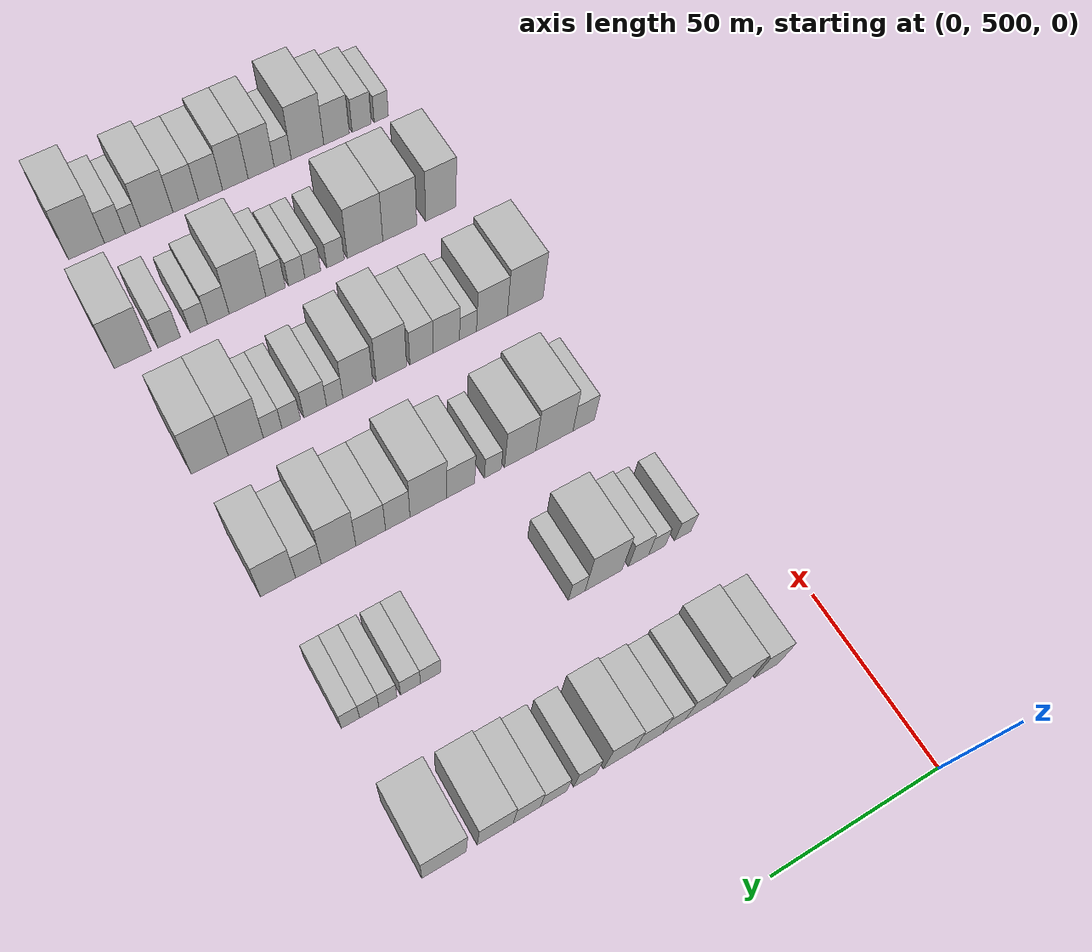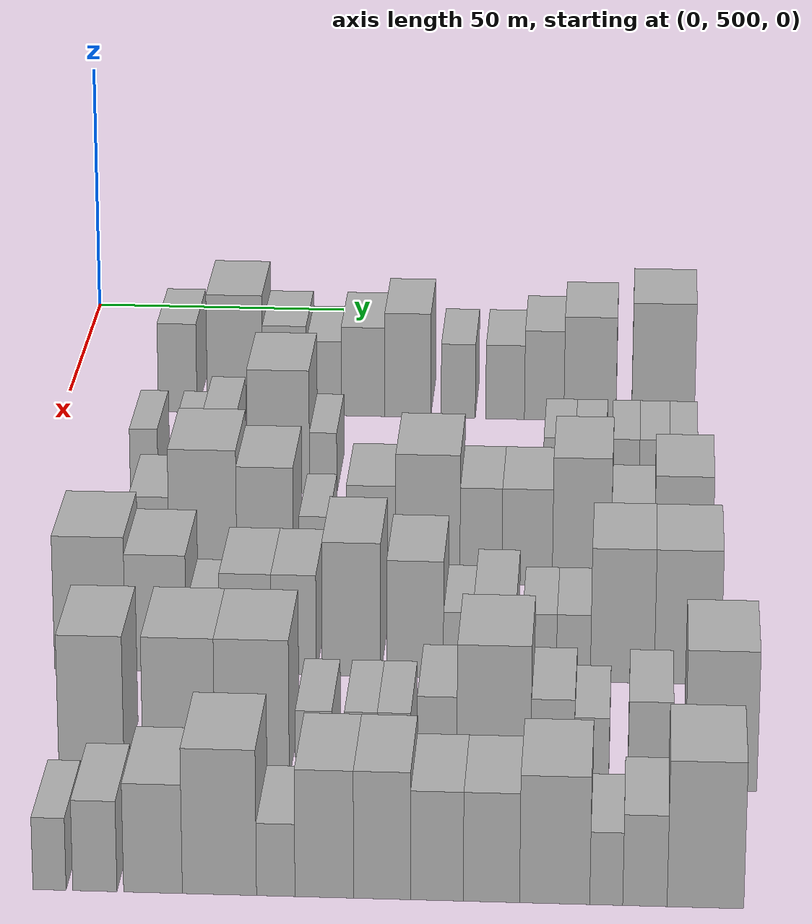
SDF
<sdf version="1.6">
 <world name="default">
  <model name="building_123">
   <static>1</static>
   <pose>50.0000 522.0347 0 0.000000 0.000000 0.000000</pose>
   <link name="link">
    <pose>0 0 9.00 0 0 0</pose>
    <collision name="collision"><geometry><box><size>20.0000 7.4185 18.0000</size></box></geometry></collision>
    <visual name="visual">
     <cast_shadows>0</cast_shadows>
     <geometry><box><size>20.0000 7.4185 18.0000</size></box></geometry>
     <material>
      <script>
       <uri>model://HANNAS_wall/materials/scripts</uri>
       <uri>model://HANNAS_wall/materials/textures</uri>
       <name>vrc/HANNAS_wall</name>
      </script>
     </material>
    </visual>
   </link>
  </model>
  <model name="building_124">
   <static>1</static>
   <pose>50.0000 533.0693 0 0.000000 0.000000 0.000000</pose>
   <link name="link">
    <pose>0 0 12.00 0 0 0</pose>
    <collision name="collision"><geometry><box><size>20.0000 10.6507 24.0000</size></box></geometry></collision>
    <visual name="visual">
     <cast_shadows>0</cast_shadows>
     <geometry><box><size>20.0000 10.6507 24.0000</size></box></geometry>
     <material>
      <script>
       <uri>model://HANNAS_wall/materials/scripts</uri>
       <uri>model://HANNAS_wall/materials/textures</uri>
       <name>vrc/HANNAS_wall</name>
      </script>
     </material>
    </visual>
   </link>
  </model>
  <model name="building_125">
   <static>1</static>
   <pose>50.0000 542.5778 0 0.000000 0.000000 0.000000</pose>
   <link name="link">
    <pose>0 0 9.00 0 0 0</pose>
    <collision name="collision"><geometry><box><size>20.0000 8.3663 18.0000</size></box></geometry></collision>
    <visual name="visual">
     <cast_shadows>0</cast_shadows>
     <geometry><box><size>20.0000 8.3663 18.0000</size></box></geometry>
     <material>
      <script>
       <uri>model://HANNAS_wall/materials/scripts</uri>
       <uri>model://HANNAS_wall/materials/textures</uri>
       <name>vrc/HANNAS_wall</name>
      </script>
     </material>
    </visual>
   </link>
  </model>
  <model name="building_126">
   <static>1</static>
   <pose>50.0000 550.0968 0 0.000000 0.000000 0.000000</pose>
   <link name="link">
    <pose>0 0 7.50 0 0 0</pose>
    <collision name="collision"><geometry><box><size>20.0000 6.6716 15.0000</size></box></geometry></collision>
    <visual name="visual">
     <cast_shadows>0</cast_shadows>
     <geometry><box><size>20.0000 6.6716 15.0000</size></box></geometry>
     <material>
      <script>
       <uri>model://HANNAS_wall/materials/scripts</uri>
       <uri>model://HANNAS_wall/materials/textures</uri>
       <name>vrc/HANNAS_wall</name>
      </script>
     </material>
    </visual>
   </link>
  </model>
  <model name="building_127">
   <static>1</static>
   <pose>50.0000 557.5930 0 0.000000 0.000000 0.000000</pose>
   <link name="link">
    <pose>0 0 9.00 0 0 0</pose>
    <collision name="collision"><geometry><box><size>20.0000 8.3209 18.0000</size></box></geometry></collision>
    <visual name="visual">
     <cast_shadows>0</cast_shadows>
     <geometry><box><size>20.0000 8.3209 18.0000</size></box></geometry>
     <material>
      <script>
       <uri>model://HANNAS_wall/materials/scripts</uri>
       <uri>model://HANNAS_wall/materials/textures</uri>
       <name>vrc/HANNAS_wall</name>
      </script>
     </material>
    </visual>
   </link>
  </model>
  <model name="building_128">
   <static>1</static>
   <pose>50.0000 566.1516 0 0.000000 0.000000 0.000000</pose>
   <link name="link">
    <pose>0 0 10.50 0 0 0</pose>
    <collision name="collision"><geometry><box><size>20.0000 8.7962 21.0000</size></box></geometry></collision>
    <visual name="visual">
     <cast_shadows>0</cast_shadows>
     <geometry><box><size>20.0000 8.7962 21.0000</size></box></geometry>
     <material>
      <script>
       <uri>model://HANNAS_wall/materials/scripts</uri>
       <uri>model://HANNAS_wall/materials/textures</uri>
       <name>vrc/HANNAS_wall</name>
      </script>
     </material>
    </visual>
   </link>
  </model>
  <model name="building_129">
   <static>1</static>
   <pose>50.0000 575.8102 0 0.000000 0.000000 0.000000</pose>
   <link name="link">
    <pose>0 0 7.50 0 0 0</pose>
    <collision name="collision"><geometry><box><size>20.0000 6.5209 15.0000</size></box></geometry></collision>
    <visual name="visual">
     <cast_shadows>0</cast_shadows>
     <geometry><box><size>20.0000 6.5209 15.0000</size></box></geometry>
     <material>
      <script>
       <uri>model://HANNAS_wall/materials/scripts</uri>
       <uri>model://HANNAS_wall/materials/textures</uri>
       <name>vrc/HANNAS_wall</name>
      </script>
     </material>
    </visual>
   </link>
  </model>
  <model name="building_130">
   <static>1</static>
   <pose>50.0000 584.7648 0 0.000000 0.000000 0.000000</pose>
   <link name="link">
    <pose>0 0 7.50 0 0 0</pose>
    <collision name="collision"><geometry><box><size>20.0000 7.3884 15.0000</size></box></geometry></collision>
    <visual name="visual">
     <cast_shadows>0</cast_shadows>
     <geometry><box><size>20.0000 7.3884 15.0000</size></box></geometry>
     <material>
      <script>
       <uri>model://HANNAS_wall/materials/scripts</uri>
       <uri>model://HANNAS_wall/materials/textures</uri>
       <name>vrc/HANNAS_wall</name>
      </script>
     </material>
    </visual>
   </link>
  </model>
  <model name="building_131">
   <static>1</static>
   <pose>50.0000 592.2208 0 0.000000 0.000000 0.000000</pose>
   <link name="link">
    <pose>0 0 9.00 0 0 0</pose>
    <collision name="collision"><geometry><box><size>20.0000 7.5235 18.0000</size></box></geometry></collision>
    <visual name="visual">
     <cast_shadows>0</cast_shadows>
     <geometry><box><size>20.0000 7.5235 18.0000</size></box></geometry>
     <material>
      <script>
       <uri>model://HANNAS_wall/materials/scripts</uri>
       <uri>model://HANNAS_wall/materials/textures</uri>
       <name>vrc/HANNAS_wall</name>
      </script>
     </material>
    </visual>
   </link>
  </model>
  <model name="building_132">
   <static>1</static>
   <pose>50.0000 600.9324 0 0.000000 0.000000 0.000000</pose>
   <link name="link">
    <pose>0 0 10.50 0 0 0</pose>
    <collision name="collision"><geometry><box><size>20.0000 9.8997 21.0000</size></box></geometry></collision>
    <visual name="visual">
     <cast_shadows>0</cast_shadows>
     <geometry><box><size>20.0000 9.8997 21.0000</size></box></geometry>
     <material>
      <script>
       <uri>model://HANNAS_wall/materials/scripts</uri>
       <uri>model://HANNAS_wall/materials/textures</uri>
       <name>vrc/HANNAS_wall</name>
      </script>
     </material>
    </visual>
   </link>
  </model>
  <model name="building_133">
   <static>1</static>
   <pose>50.0000 614.8468 0 0.000000 0.000000 0.000000</pose>
   <link name="link">
    <pose>0 0 12.00 0 0 0</pose>
    <collision name="collision"><geometry><box><size>20.0000 11.9291 24.0000</size></box></geometry></collision>
    <visual name="visual">
     <cast_shadows>0</cast_shadows>
     <geometry><box><size>20.0000 11.9291 24.0000</size></box></geometry>
     <material>
      <script>
       <uri>model://HANNAS_wall/materials/scripts</uri>
       <uri>model://HANNAS_wall/materials/textures</uri>
       <name>vrc/HANNAS_wall</name>
      </script>
     </material>
    </visual>
   </link>
  </model>
  <model name="building_253">
   <static>1</static>
   <pose>90.0000 519.9269 0 0.000000 0.000000 0.000000</pose>
   <link name="link">
    <pose>0 0 6.00 0 0 0</pose>
    <collision name="collision"><geometry><box><size>20.0000 5.1195 12.0000</size></box></geometry></collision>
    <visual name="visual">
     <cast_shadows>0</cast_shadows>
     <geometry><box><size>20.0000 5.1195 12.0000</size></box></geometry>
     <material>
      <script>
       <uri>model://HANNAS_wall/materials/scripts</uri>
       <uri>model://HANNAS_wall/materials/textures</uri>
       <name>vrc/HANNAS_wall</name>
      </script>
     </material>
    </visual>
   </link>
  </model>
  <model name="building_254">
   <static>1</static>
   <pose>90.0000 528.1009 0 0.000000 0.000000 0.000000</pose>
   <link name="link">
    <pose>0 0 6.00 0 0 0</pose>
    <collision name="collision"><geometry><box><size>20.0000 5.2286 12.0000</size></box></geometry></collision>
    <visual name="visual">
     <cast_shadows>0</cast_shadows>
     <geometry><box><size>20.0000 5.2286 12.0000</size></box></geometry>
     <material>
      <script>
       <uri>model://HANNAS_wall/materials/scripts</uri>
       <uri>model://HANNAS_wall/materials/textures</uri>
       <name>vrc/HANNAS_wall</name>
      </script>
     </material>
    </visual>
   </link>
  </model>
  <model name="building_255">
   <static>1</static>
   <pose>90.0000 533.8353 0 0.000000 0.000000 0.000000</pose>
   <link name="link">
    <pose>0 0 7.50 0 0 0</pose>
    <collision name="collision"><geometry><box><size>20.0000 6.2402 15.0000</size></box></geometry></collision>
    <visual name="visual">
     <cast_shadows>0</cast_shadows>
     <geometry><box><size>20.0000 6.2402 15.0000</size></box></geometry>
     <material>
      <script>
       <uri>model://HANNAS_wall/materials/scripts</uri>
       <uri>model://HANNAS_wall/materials/textures</uri>
       <name>vrc/HANNAS_wall</name>
      </script>
     </material>
    </visual>
   </link>
  </model>
  <model name="building_256">
   <static>1</static>
   <pose>90.0000 544.6321 0 0.000000 0.000000 0.000000</pose>
   <link name="link">
    <pose>0 0 12.00 0 0 0</pose>
    <collision name="collision"><geometry><box><size>20.0000 11.3534 24.0000</size></box></geometry></collision>
    <visual name="visual">
     <cast_shadows>0</cast_shadows>
     <geometry><box><size>20.0000 11.3534 24.0000</size></box></geometry>
     <material>
      <script>
       <uri>model://HANNAS_wall/materials/scripts</uri>
       <uri>model://HANNAS_wall/materials/textures</uri>
       <name>vrc/HANNAS_wall</name>
      </script>
     </material>
    </visual>
   </link>
  </model>
  <model name="building_257">
   <static>1</static>
   <pose>90.0000 552.8049 0 0.000000 0.000000 0.000000</pose>
   <link name="link">
    <pose>0 0 6.00 0 0 0</pose>
    <collision name="collision"><geometry><box><size>20.0000 4.9923 12.0000</size></box></geometry></collision>
    <visual name="visual">
     <cast_shadows>0</cast_shadows>
     <geometry><box><size>20.0000 4.9923 12.0000</size></box></geometry>
     <material>
      <script>
       <uri>model://HANNAS_wall/materials/scripts</uri>
       <uri>model://HANNAS_wall/materials/textures</uri>
       <name>vrc/HANNAS_wall</name>
      </script>
     </material>
    </visual>
   </link>
  </model>
  <model name="building_258">
   <static>1</static>
   <pose>90.0000 595.9168 0 0.000000 0.000000 0.000000</pose>
   <link name="link">
    <pose>0 0 6.00 0 0 0</pose>
    <collision name="collision"><geometry><box><size>20.0000 5.7438 12.0000</size></box></geometry></collision>
    <visual name="visual">
     <cast_shadows>0</cast_shadows>
     <geometry><box><size>20.0000 5.7438 12.0000</size></box></geometry>
     <material>
      <script>
       <uri>model://HANNAS_wall/materials/scripts</uri>
       <uri>model://HANNAS_wall/materials/textures</uri>
       <name>vrc/HANNAS_wall</name>
      </script>
     </material>
    </visual>
   </link>
  </model>
  <model name="building_259">
   <static>1</static>
   <pose>90.0000 601.5986 0 0.000000 0.000000 0.000000</pose>
   <link name="link">
    <pose>0 0 6.00 0 0 0</pose>
    <collision name="collision"><geometry><box><size>20.0000 5.6197 12.0000</size></box></geometry></collision>
    <visual name="visual">
     <cast_shadows>0</cast_shadows>
     <geometry><box><size>20.0000 5.6197 12.0000</size></box></geometry>
     <material>
      <script>
       <uri>model://HANNAS_wall/materials/scripts</uri>
       <uri>model://HANNAS_wall/materials/textures</uri>
       <name>vrc/HANNAS_wall</name>
      </script>
     </material>
    </visual>
   </link>
  </model>
  <model name="building_260">
   <static>1</static>
   <pose>90.0000 607.9324 0 0.000000 0.000000 0.000000</pose>
   <link name="link">
    <pose>0 0 6.00 0 0 0</pose>
    <collision name="collision"><geometry><box><size>20.0000 5.0478 12.0000</size></box></geometry></collision>
    <visual name="visual">
     <cast_shadows>0</cast_shadows>
     <geometry><box><size>20.0000 5.0478 12.0000</size></box></geometry>
     <material>
      <script>
       <uri>model://HANNAS_wall/materials/scripts</uri>
       <uri>model://HANNAS_wall/materials/textures</uri>
       <name>vrc/HANNAS_wall</name>
      </script>
     </material>
    </visual>
   </link>
  </model>
  <model name="building_261">
   <static>1</static>
   <pose>90.0000 613.1589 0 0.000000 0.000000 0.000000</pose>
   <link name="link">
    <pose>0 0 6.00 0 0 0</pose>
    <collision name="collision"><geometry><box><size>20.0000 5.4052 12.0000</size></box></geometry></collision>
    <visual name="visual">
     <cast_shadows>0</cast_shadows>
     <geometry><box><size>20.0000 5.4052 12.0000</size></box></geometry>
     <material>
      <script>
       <uri>model://HANNAS_wall/materials/scripts</uri>
       <uri>model://HANNAS_wall/materials/textures</uri>
       <name>vrc/HANNAS_wall</name>
      </script>
     </material>
    </visual>
   </link>
  </model>
  <model name="building_262">
   <static>1</static>
   <pose>90.0000 618.4021 0 0.000000 0.000000 0.000000</pose>
   <link name="link">
    <pose>0 0 6.00 0 0 0</pose>
    <collision name="collision"><geometry><box><size>20.0000 5.0812 12.0000</size></box></geometry></collision>
    <visual name="visual">
     <cast_shadows>0</cast_shadows>
     <geometry><box><size>20.0000 5.0812 12.0000</size></box></geometry>
     <material>
      <script>
       <uri>model://HANNAS_wall/materials/scripts</uri>
       <uri>model://HANNAS_wall/materials/textures</uri>
       <name>vrc/HANNAS_wall</name>
      </script>
     </material>
    </visual>
   </link>
  </model>
  <model name="building_391">
   <static>1</static>
   <pose>130.0000 525.1942 0 0.000000 0.000000 0.000000</pose>
   <link name="link">
    <pose>0 0 7.50 0 0 0</pose>
    <collision name="collision"><geometry><box><size>20.0000 6.9788 15.0000</size></box></geometry></collision>
    <visual name="visual">
     <cast_shadows>0</cast_shadows>
     <geometry><box><size>20.0000 6.9788 15.0000</size></box></geometry>
     <material>
      <script>
       <uri>model://HANNAS_wall/materials/scripts</uri>
       <uri>model://HANNAS_wall/materials/textures</uri>
       <name>vrc/HANNAS_wall</name>
      </script>
     </material>
    </visual>
   </link>
  </model>
  <model name="building_392">
   <static>1</static>
   <pose>130.0000 534.6092 0 0.000000 0.000000 0.000000</pose>
   <link name="link">
    <pose>0 0 12.00 0 0 0</pose>
    <collision name="collision"><geometry><box><size>20.0000 11.8512 24.0000</size></box></geometry></collision>
    <visual name="visual">
     <cast_shadows>0</cast_shadows>
     <geometry><box><size>20.0000 11.8512 24.0000</size></box></geometry>
     <material>
      <script>
       <uri>model://HANNAS_wall/materials/scripts</uri>
       <uri>model://HANNAS_wall/materials/textures</uri>
       <name>vrc/HANNAS_wall</name>
      </script>
     </material>
    </visual>
   </link>
  </model>
  <model name="building_393">
   <static>1</static>
   <pose>130.0000 545.4912 0 0.000000 0.000000 0.000000</pose>
   <link name="link">
    <pose>0 0 10.50 0 0 0</pose>
    <collision name="collision"><geometry><box><size>20.0000 9.9129 21.0000</size></box></geometry></collision>
    <visual name="visual">
     <cast_shadows>0</cast_shadows>
     <geometry><box><size>20.0000 9.9129 21.0000</size></box></geometry>
     <material>
      <script>
       <uri>model://HANNAS_wall/materials/scripts</uri>
       <uri>model://HANNAS_wall/materials/textures</uri>
       <name>vrc/HANNAS_wall</name>
      </script>
     </material>
    </visual>
   </link>
  </model>
  <model name="building_394">
   <static>1</static>
   <pose>130.0000 554.0895 0 0.000000 0.000000 0.000000</pose>
   <link name="link">
    <pose>0 0 6.00 0 0 0</pose>
    <collision name="collision"><geometry><box><size>20.0000 5.2837 12.0000</size></box></geometry></collision>
    <visual name="visual">
     <cast_shadows>0</cast_shadows>
     <geometry><box><size>20.0000 5.2837 12.0000</size></box></geometry>
     <material>
      <script>
       <uri>model://HANNAS_wall/materials/scripts</uri>
       <uri>model://HANNAS_wall/materials/textures</uri>
       <name>vrc/HANNAS_wall</name>
      </script>
     </material>
    </visual>
   </link>
  </model>
  <model name="building_395">
   <static>1</static>
   <pose>130.0000 564.0157 0 0.000000 0.000000 0.000000</pose>
   <link name="link">
    <pose>0 0 9.00 0 0 0</pose>
    <collision name="collision"><geometry><box><size>20.0000 8.5686 18.0000</size></box></geometry></collision>
    <visual name="visual">
     <cast_shadows>0</cast_shadows>
     <geometry><box><size>20.0000 8.5686 18.0000</size></box></geometry>
     <material>
      <script>
       <uri>model://HANNAS_wall/materials/scripts</uri>
       <uri>model://HANNAS_wall/materials/textures</uri>
       <name>vrc/HANNAS_wall</name>
      </script>
     </material>
    </visual>
   </link>
  </model>
  <model name="building_396">
   <static>1</static>
   <pose>130.0000 573.9036 0 0.000000 0.000000 0.000000</pose>
   <link name="link">
    <pose>0 0 12.00 0 0 0</pose>
    <collision name="collision"><geometry><box><size>20.0000 11.2072 24.0000</size></box></geometry></collision>
    <visual name="visual">
     <cast_shadows>0</cast_shadows>
     <geometry><box><size>20.0000 11.2072 24.0000</size></box></geometry>
     <material>
      <script>
       <uri>model://HANNAS_wall/materials/scripts</uri>
       <uri>model://HANNAS_wall/materials/textures</uri>
       <name>vrc/HANNAS_wall</name>
      </script>
     </material>
    </visual>
   </link>
  </model>
  <model name="building_397">
   <static>1</static>
   <pose>130.0000 583.1644 0 0.000000 0.000000 0.000000</pose>
   <link name="link">
    <pose>0 0 9.00 0 0 0</pose>
    <collision name="collision"><geometry><box><size>20.0000 7.3144 18.0000</size></box></geometry></collision>
    <visual name="visual">
     <cast_shadows>0</cast_shadows>
     <geometry><box><size>20.0000 7.3144 18.0000</size></box></geometry>
     <material>
      <script>
       <uri>model://HANNAS_wall/materials/scripts</uri>
       <uri>model://HANNAS_wall/materials/textures</uri>
       <name>vrc/HANNAS_wall</name>
      </script>
     </material>
    </visual>
   </link>
  </model>
  <model name="building_398">
   <static>1</static>
   <pose>130.0000 591.2149 0 0.000000 0.000000 0.000000</pose>
   <link name="link">
    <pose>0 0 9.00 0 0 0</pose>
    <collision name="collision"><geometry><box><size>20.0000 8.7865 18.0000</size></box></geometry></collision>
    <visual name="visual">
     <cast_shadows>0</cast_shadows>
     <geometry><box><size>20.0000 8.7865 18.0000</size></box></geometry>
     <material>
      <script>
       <uri>model://HANNAS_wall/materials/scripts</uri>
       <uri>model://HANNAS_wall/materials/textures</uri>
       <name>vrc/HANNAS_wall</name>
      </script>
     </material>
    </visual>
   </link>
  </model>
  <model name="building_399">
   <static>1</static>
   <pose>130.0000 600.6918 0 0.000000 0.000000 0.000000</pose>
   <link name="link">
    <pose>0 0 12.00 0 0 0</pose>
    <collision name="collision"><geometry><box><size>20.0000 10.1672 24.0000</size></box></geometry></collision>
    <visual name="visual">
     <cast_shadows>0</cast_shadows>
     <geometry><box><size>20.0000 10.1672 24.0000</size></box></geometry>
     <material>
      <script>
       <uri>model://HANNAS_wall/materials/scripts</uri>
       <uri>model://HANNAS_wall/materials/textures</uri>
       <name>vrc/HANNAS_wall</name>
      </script>
     </material>
    </visual>
   </link>
  </model>
  <model name="building_400">
   <static>1</static>
   <pose>130.0000 609.5119 0 0.000000 0.000000 0.000000</pose>
   <link name="link">
    <pose>0 0 7.50 0 0 0</pose>
    <collision name="collision"><geometry><box><size>20.0000 7.4730 15.0000</size></box></geometry></collision>
    <visual name="visual">
     <cast_shadows>0</cast_shadows>
     <geometry><box><size>20.0000 7.4730 15.0000</size></box></geometry>
     <material>
      <script>
       <uri>model://HANNAS_wall/materials/scripts</uri>
       <uri>model://HANNAS_wall/materials/textures</uri>
       <name>vrc/HANNAS_wall</name>
      </script>
     </material>
    </visual>
   </link>
  </model>
  <model name="building_401">
   <static>1</static>
   <pose>130.0000 618.3020 0 0.000000 0.000000 0.000000</pose>
   <link name="link">
    <pose>0 0 10.50 0 0 0</pose>
    <collision name="collision"><geometry><box><size>20.0000 10.1071 21.0000</size></box></geometry></collision>
    <visual name="visual">
     <cast_shadows>0</cast_shadows>
     <geometry><box><size>20.0000 10.1071 21.0000</size></box></geometry>
     <material>
      <script>
       <uri>model://HANNAS_wall/materials/scripts</uri>
       <uri>model://HANNAS_wall/materials/textures</uri>
       <name>vrc/HANNAS_wall</name>
      </script>
     </material>
    </visual>
   </link>
  </model>
  <model name="building_534">
   <static>1</static>
   <pose>170.0000 519.5546 0 0.000000 0.000000 0.000000</pose>
   <link name="link">
    <pose>0 0 12.00 0 0 0</pose>
    <collision name="collision"><geometry><box><size>20.0000 11.9289 24.0000</size></box></geometry></collision>
    <visual name="visual">
     <cast_shadows>0</cast_shadows>
     <geometry><box><size>20.0000 11.9289 24.0000</size></box></geometry>
     <material>
      <script>
       <uri>model://HANNAS_wall/materials/scripts</uri>
       <uri>model://HANNAS_wall/materials/textures</uri>
       <name>vrc/HANNAS_wall</name>
      </script>
     </material>
    </visual>
   </link>
  </model>
  <model name="building_535">
   <static>1</static>
   <pose>170.0000 530.6144 0 0.000000 0.000000 0.000000</pose>
   <link name="link">
    <pose>0 0 10.50 0 0 0</pose>
    <collision name="collision"><geometry><box><size>20.0000 10.1907 21.0000</size></box></geometry></collision>
    <visual name="visual">
     <cast_shadows>0</cast_shadows>
     <geometry><box><size>20.0000 10.1907 21.0000</size></box></geometry>
     <material>
      <script>
       <uri>model://HANNAS_wall/materials/scripts</uri>
       <uri>model://HANNAS_wall/materials/textures</uri>
       <name>vrc/HANNAS_wall</name>
      </script>
     </material>
    </visual>
   </link>
  </model>
  <model name="building_536">
   <static>1</static>
   <pose>170.0000 538.4869 0 0.000000 0.000000 0.000000</pose>
   <link name="link">
    <pose>0 0 6.00 0 0 0</pose>
    <collision name="collision"><geometry><box><size>20.0000 5.5544 12.0000</size></box></geometry></collision>
    <visual name="visual">
     <cast_shadows>0</cast_shadows>
     <geometry><box><size>20.0000 5.5544 12.0000</size></box></geometry>
     <material>
      <script>
       <uri>model://HANNAS_wall/materials/scripts</uri>
       <uri>model://HANNAS_wall/materials/textures</uri>
       <name>vrc/HANNAS_wall</name>
      </script>
     </material>
    </visual>
   </link>
  </model>
  <model name="building_537">
   <static>1</static>
   <pose>170.0000 545.5565 0 0.000000 0.000000 0.000000</pose>
   <link name="link">
    <pose>0 0 9.00 0 0 0</pose>
    <collision name="collision"><geometry><box><size>20.0000 8.5847 18.0000</size></box></geometry></collision>
    <visual name="visual">
     <cast_shadows>0</cast_shadows>
     <geometry><box><size>20.0000 8.5847 18.0000</size></box></geometry>
     <material>
      <script>
       <uri>model://HANNAS_wall/materials/scripts</uri>
       <uri>model://HANNAS_wall/materials/textures</uri>
       <name>vrc/HANNAS_wall</name>
      </script>
     </material>
    </visual>
   </link>
  </model>
  <model name="building_538">
   <static>1</static>
   <pose>170.0000 553.5806 0 0.000000 0.000000 0.000000</pose>
   <link name="link">
    <pose>0 0 9.00 0 0 0</pose>
    <collision name="collision"><geometry><box><size>20.0000 7.4637 18.0000</size></box></geometry></collision>
    <visual name="visual">
     <cast_shadows>0</cast_shadows>
     <geometry><box><size>20.0000 7.4637 18.0000</size></box></geometry>
     <material>
      <script>
       <uri>model://HANNAS_wall/materials/scripts</uri>
       <uri>model://HANNAS_wall/materials/textures</uri>
       <name>vrc/HANNAS_wall</name>
      </script>
     </material>
    </visual>
   </link>
  </model>
  <model name="building_539">
   <static>1</static>
   <pose>170.0000 563.1712 0 0.000000 0.000000 0.000000</pose>
   <link name="link">
    <pose>0 0 12.00 0 0 0</pose>
    <collision name="collision"><geometry><box><size>20.0000 9.7175 24.0000</size></box></geometry></collision>
    <visual name="visual">
     <cast_shadows>0</cast_shadows>
     <geometry><box><size>20.0000 9.7175 24.0000</size></box></geometry>
     <material>
      <script>
       <uri>model://HANNAS_wall/materials/scripts</uri>
       <uri>model://HANNAS_wall/materials/textures</uri>
       <name>vrc/HANNAS_wall</name>
      </script>
     </material>
    </visual>
   </link>
  </model>
  <model name="building_540">
   <static>1</static>
   <pose>170.0000 573.7438 0 0.000000 0.000000 0.000000</pose>
   <link name="link">
    <pose>0 0 10.50 0 0 0</pose>
    <collision name="collision"><geometry><box><size>20.0000 9.4277 21.0000</size></box></geometry></collision>
    <visual name="visual">
     <cast_shadows>0</cast_shadows>
     <geometry><box><size>20.0000 9.4277 21.0000</size></box></geometry>
     <material>
      <script>
       <uri>model://HANNAS_wall/materials/scripts</uri>
       <uri>model://HANNAS_wall/materials/textures</uri>
       <name>vrc/HANNAS_wall</name>
      </script>
     </material>
    </visual>
   </link>
  </model>
  <model name="building_541">
   <static>1</static>
   <pose>170.0000 580.9743 0 0.000000 0.000000 0.000000</pose>
   <link name="link">
    <pose>0 0 6.00 0 0 0</pose>
    <collision name="collision"><geometry><box><size>20.0000 5.0333 12.0000</size></box></geometry></collision>
    <visual name="visual">
     <cast_shadows>0</cast_shadows>
     <geometry><box><size>20.0000 5.0333 12.0000</size></box></geometry>
     <material>
      <script>
       <uri>model://HANNAS_wall/materials/scripts</uri>
       <uri>model://HANNAS_wall/materials/textures</uri>
       <name>vrc/HANNAS_wall</name>
      </script>
     </material>
    </visual>
   </link>
  </model>
  <model name="building_542">
   <static>1</static>
   <pose>170.0000 587.0076 0 0.000000 0.000000 0.000000</pose>
   <link name="link">
    <pose>0 0 7.50 0 0 0</pose>
    <collision name="collision"><geometry><box><size>20.0000 7.0334 15.0000</size></box></geometry></collision>
    <visual name="visual">
     <cast_shadows>0</cast_shadows>
     <geometry><box><size>20.0000 7.0334 15.0000</size></box></geometry>
     <material>
      <script>
       <uri>model://HANNAS_wall/materials/scripts</uri>
       <uri>model://HANNAS_wall/materials/textures</uri>
       <name>vrc/HANNAS_wall</name>
      </script>
     </material>
    </visual>
   </link>
  </model>
  <model name="building_543">
   <static>1</static>
   <pose>170.0000 594.3684 0 0.000000 0.000000 0.000000</pose>
   <link name="link">
    <pose>0 0 6.00 0 0 0</pose>
    <collision name="collision"><geometry><box><size>20.0000 5.6882 12.0000</size></box></geometry></collision>
    <visual name="visual">
     <cast_shadows>0</cast_shadows>
     <geometry><box><size>20.0000 5.6882 12.0000</size></box></geometry>
     <material>
      <script>
       <uri>model://HANNAS_wall/materials/scripts</uri>
       <uri>model://HANNAS_wall/materials/textures</uri>
       <name>vrc/HANNAS_wall</name>
      </script>
     </material>
    </visual>
   </link>
  </model>
  <model name="building_544">
   <static>1</static>
   <pose>170.0000 600.0298 0 0.000000 0.000000 0.000000</pose>
   <link name="link">
    <pose>0 0 6.00 0 0 0</pose>
    <collision name="collision"><geometry><box><size>20.0000 5.6346 12.0000</size></box></geometry></collision>
    <visual name="visual">
     <cast_shadows>0</cast_shadows>
     <geometry><box><size>20.0000 5.6346 12.0000</size></box></geometry>
     <material>
      <script>
       <uri>model://HANNAS_wall/materials/scripts</uri>
       <uri>model://HANNAS_wall/materials/textures</uri>
       <name>vrc/HANNAS_wall</name>
      </script>
     </material>
    </visual>
   </link>
  </model>
  <model name="building_545">
   <static>1</static>
   <pose>170.0000 608.1228 0 0.000000 0.000000 0.000000</pose>
   <link name="link">
    <pose>0 0 12.00 0 0 0</pose>
    <collision name="collision"><geometry><box><size>20.0000 10.5515 24.0000</size></box></geometry></collision>
    <visual name="visual">
     <cast_shadows>0</cast_shadows>
     <geometry><box><size>20.0000 10.5515 24.0000</size></box></geometry>
     <material>
      <script>
       <uri>model://HANNAS_wall/materials/scripts</uri>
       <uri>model://HANNAS_wall/materials/textures</uri>
       <name>vrc/HANNAS_wall</name>
      </script>
     </material>
    </visual>
   </link>
  </model>
  <model name="building_546">
   <static>1</static>
   <pose>170.0000 618.8873 0 0.000000 0.000000 0.000000</pose>
   <link name="link">
    <pose>0 0 12.00 0 0 0</pose>
    <collision name="collision"><geometry><box><size>20.0000 10.9776 24.0000</size></box></geometry></collision>
    <visual name="visual">
     <cast_shadows>0</cast_shadows>
     <geometry><box><size>20.0000 10.9776 24.0000</size></box></geometry>
     <material>
      <script>
       <uri>model://HANNAS_wall/materials/scripts</uri>
       <uri>model://HANNAS_wall/materials/textures</uri>
       <name>vrc/HANNAS_wall</name>
      </script>
     </material>
    </visual>
   </link>
  </model>
  <model name="building_676">
   <static>1</static>
   <pose>210.0000 524.5613 0 0.000000 0.000000 0.000000</pose>
   <link name="link">
    <pose>0 0 12.00 0 0 0</pose>
    <collision name="collision"><geometry><box><size>20.0000 10.3765 24.0000</size></box></geometry></collision>
    <visual name="visual">
     <cast_shadows>0</cast_shadows>
     <geometry><box><size>20.0000 10.3765 24.0000</size></box></geometry>
     <material>
      <script>
       <uri>model://HANNAS_wall/materials/scripts</uri>
       <uri>model://HANNAS_wall/materials/textures</uri>
       <name>vrc/HANNAS_wall</name>
      </script>
     </material>
    </visual>
   </link>
  </model>
  <model name="building_677">
   <static>1</static>
   <pose>210.0000 538.4620 0 0.000000 0.000000 0.000000</pose>
   <link name="link">
    <pose>0 0 12.00 0 0 0</pose>
    <collision name="collision"><geometry><box><size>20.0000 11.4249 24.0000</size></box></geometry></collision>
    <visual name="visual">
     <cast_shadows>0</cast_shadows>
     <geometry><box><size>20.0000 11.4249 24.0000</size></box></geometry>
     <material>
      <script>
       <uri>model://HANNAS_wall/materials/scripts</uri>
       <uri>model://HANNAS_wall/materials/textures</uri>
       <name>vrc/HANNAS_wall</name>
      </script>
     </material>
    </visual>
   </link>
  </model>
  <model name="building_678">
   <static>1</static>
   <pose>210.0000 550.0614 0 0.000000 0.000000 0.000000</pose>
   <link name="link">
    <pose>0 0 12.00 0 0 0</pose>
    <collision name="collision"><geometry><box><size>20.0000 11.7739 24.0000</size></box></geometry></collision>
    <visual name="visual">
     <cast_shadows>0</cast_shadows>
     <geometry><box><size>20.0000 11.7739 24.0000</size></box></geometry>
     <material>
      <script>
       <uri>model://HANNAS_wall/materials/scripts</uri>
       <uri>model://HANNAS_wall/materials/textures</uri>
       <name>vrc/HANNAS_wall</name>
      </script>
     </material>
    </visual>
   </link>
  </model>
  <model name="building_679">
   <static>1</static>
   <pose>210.0000 559.8223 0 0.000000 0.000000 0.000000</pose>
   <link name="link">
    <pose>0 0 6.00 0 0 0</pose>
    <collision name="collision"><geometry><box><size>20.0000 5.7480 12.0000</size></box></geometry></collision>
    <visual name="visual">
     <cast_shadows>0</cast_shadows>
     <geometry><box><size>20.0000 5.7480 12.0000</size></box></geometry>
     <material>
      <script>
       <uri>model://HANNAS_wall/materials/scripts</uri>
       <uri>model://HANNAS_wall/materials/textures</uri>
       <name>vrc/HANNAS_wall</name>
      </script>
     </material>
    </visual>
   </link>
  </model>
  <model name="building_680">
   <static>1</static>
   <pose>210.0000 567.2761 0 0.000000 0.000000 0.000000</pose>
   <link name="link">
    <pose>0 0 6.00 0 0 0</pose>
    <collision name="collision"><geometry><box><size>20.0000 5.1595 12.0000</size></box></geometry></collision>
    <visual name="visual">
     <cast_shadows>0</cast_shadows>
     <geometry><box><size>20.0000 5.1595 12.0000</size></box></geometry>
     <material>
      <script>
       <uri>model://HANNAS_wall/materials/scripts</uri>
       <uri>model://HANNAS_wall/materials/textures</uri>
       <name>vrc/HANNAS_wall</name>
      </script>
     </material>
    </visual>
   </link>
  </model>
  <model name="building_681">
   <static>1</static>
   <pose>210.0000 572.5027 0 0.000000 0.000000 0.000000</pose>
   <link name="link">
    <pose>0 0 6.00 0 0 0</pose>
    <collision name="collision"><geometry><box><size>20.0000 5.2938 12.0000</size></box></geometry></collision>
    <visual name="visual">
     <cast_shadows>0</cast_shadows>
     <geometry><box><size>20.0000 5.2938 12.0000</size></box></geometry>
     <material>
      <script>
       <uri>model://HANNAS_wall/materials/scripts</uri>
       <uri>model://HANNAS_wall/materials/textures</uri>
       <name>vrc/HANNAS_wall</name>
      </script>
     </material>
    </visual>
   </link>
  </model>
  <model name="building_682">
   <static>1</static>
   <pose>210.0000 579.2781 0 0.000000 0.000000 0.000000</pose>
   <link name="link">
    <pose>0 0 7.50 0 0 0</pose>
    <collision name="collision"><geometry><box><size>20.0000 6.2570 15.0000</size></box></geometry></collision>
    <visual name="visual">
     <cast_shadows>0</cast_shadows>
     <geometry><box><size>20.0000 6.2570 15.0000</size></box></geometry>
     <material>
      <script>
       <uri>model://HANNAS_wall/materials/scripts</uri>
       <uri>model://HANNAS_wall/materials/textures</uri>
       <name>vrc/HANNAS_wall</name>
      </script>
     </material>
    </visual>
   </link>
  </model>
  <model name="building_683">
   <static>1</static>
   <pose>210.0000 588.2250 0 0.000000 0.000000 0.000000</pose>
   <link name="link">
    <pose>0 0 12.00 0 0 0</pose>
    <collision name="collision"><geometry><box><size>20.0000 11.6368 24.0000</size></box></geometry></collision>
    <visual name="visual">
     <cast_shadows>0</cast_shadows>
     <geometry><box><size>20.0000 11.6368 24.0000</size></box></geometry>
     <material>
      <script>
       <uri>model://HANNAS_wall/materials/scripts</uri>
       <uri>model://HANNAS_wall/materials/textures</uri>
       <name>vrc/HANNAS_wall</name>
      </script>
     </material>
    </visual>
   </link>
  </model>
  <model name="building_684">
   <static>1</static>
   <pose>210.0000 597.4514 0 0.000000 0.000000 0.000000</pose>
   <link name="link">
    <pose>0 0 7.50 0 0 0</pose>
    <collision name="collision"><geometry><box><size>20.0000 6.8160 15.0000</size></box></geometry></collision>
    <visual name="visual">
     <cast_shadows>0</cast_shadows>
     <geometry><box><size>20.0000 6.8160 15.0000</size></box></geometry>
     <material>
      <script>
       <uri>model://HANNAS_wall/materials/scripts</uri>
       <uri>model://HANNAS_wall/materials/textures</uri>
       <name>vrc/HANNAS_wall</name>
      </script>
     </material>
    </visual>
   </link>
  </model>
  <model name="building_685">
   <static>1</static>
   <pose>210.0000 603.5907 0 0.000000 0.000000 0.000000</pose>
   <link name="link">
    <pose>0 0 6.00 0 0 0</pose>
    <collision name="collision"><geometry><box><size>20.0000 5.4626 12.0000</size></box></geometry></collision>
    <visual name="visual">
     <cast_shadows>0</cast_shadows>
     <geometry><box><size>20.0000 5.4626 12.0000</size></box></geometry>
     <material>
      <script>
       <uri>model://HANNAS_wall/materials/scripts</uri>
       <uri>model://HANNAS_wall/materials/textures</uri>
       <name>vrc/HANNAS_wall</name>
      </script>
     </material>
    </visual>
   </link>
  </model>
  <model name="building_686">
   <static>1</static>
   <pose>210.0000 612.7961 0 0.000000 0.000000 0.000000</pose>
   <link name="link">
    <pose>0 0 7.50 0 0 0</pose>
    <collision name="collision"><geometry><box><size>20.0000 6.9482 15.0000</size></box></geometry></collision>
    <visual name="visual">
     <cast_shadows>0</cast_shadows>
     <geometry><box><size>20.0000 6.9482 15.0000</size></box></geometry>
     <material>
      <script>
       <uri>model://HANNAS_wall/materials/scripts</uri>
       <uri>model://HANNAS_wall/materials/textures</uri>
       <name>vrc/HANNAS_wall</name>
      </script>
     </material>
    </visual>
   </link>
  </model>
  <model name="building_687">
   <static>1</static>
   <pose>210.0000 623.9210 0 0.000000 0.000000 0.000000</pose>
   <link name="link">
    <pose>0 0 12.00 0 0 0</pose>
    <collision name="collision"><geometry><box><size>20.0000 11.3015 24.0000</size></box></geometry></collision>
    <visual name="visual">
     <cast_shadows>0</cast_shadows>
     <geometry><box><size>20.0000 11.3015 24.0000</size></box></geometry>
     <material>
      <script>
       <uri>model://HANNAS_wall/materials/scripts</uri>
       <uri>model://HANNAS_wall/materials/textures</uri>
       <name>vrc/HANNAS_wall</name>
      </script>
     </material>
    </visual>
   </link>
  </model>
  <model name="building_821">
   <static>1</static>
   <pose>250.0000 522.9897 0 0.000000 0.000000 0.000000</pose>
   <link name="link">
    <pose>0 0 6.00 0 0 0</pose>
    <collision name="collision"><geometry><box><size>20.0000 5.0029 12.0000</size></box></geometry></collision>
    <visual name="visual">
     <cast_shadows>0</cast_shadows>
     <geometry><box><size>20.0000 5.0029 12.0000</size></box></geometry>
     <material>
      <script>
       <uri>model://HANNAS_wall/materials/scripts</uri>
       <uri>model://HANNAS_wall/materials/textures</uri>
       <name>vrc/HANNAS_wall</name>
      </script>
     </material>
    </visual>
   </link>
  </model>
  <model name="building_822">
   <static>1</static>
   <pose>250.0000 529.8284 0 0.000000 0.000000 0.000000</pose>
   <link name="link">
    <pose>0 0 7.50 0 0 0</pose>
    <collision name="collision"><geometry><box><size>20.0000 6.6745 15.0000</size></box></geometry></collision>
    <visual name="visual">
     <cast_shadows>0</cast_shadows>
     <geometry><box><size>20.0000 6.6745 15.0000</size></box></geometry>
     <material>
      <script>
       <uri>model://HANNAS_wall/materials/scripts</uri>
       <uri>model://HANNAS_wall/materials/textures</uri>
       <name>vrc/HANNAS_wall</name>
      </script>
     </material>
    </visual>
   </link>
  </model>
  <model name="building_823">
   <static>1</static>
   <pose>250.0000 538.5863 0 0.000000 0.000000 0.000000</pose>
   <link name="link">
    <pose>0 0 9.00 0 0 0</pose>
    <collision name="collision"><geometry><box><size>20.0000 8.8413 18.0000</size></box></geometry></collision>
    <visual name="visual">
     <cast_shadows>0</cast_shadows>
     <geometry><box><size>20.0000 8.8413 18.0000</size></box></geometry>
     <material>
      <script>
       <uri>model://HANNAS_wall/materials/scripts</uri>
       <uri>model://HANNAS_wall/materials/textures</uri>
       <name>vrc/HANNAS_wall</name>
      </script>
     </material>
    </visual>
   </link>
  </model>
  <model name="building_824">
   <static>1</static>
   <pose>250.0000 548.5783 0 0.000000 0.000000 0.000000</pose>
   <link name="link">
    <pose>0 0 12.00 0 0 0</pose>
    <collision name="collision"><geometry><box><size>20.0000 11.1427 24.0000</size></box></geometry></collision>
    <visual name="visual">
     <cast_shadows>0</cast_shadows>
     <geometry><box><size>20.0000 11.1427 24.0000</size></box></geometry>
     <material>
      <script>
       <uri>model://HANNAS_wall/materials/scripts</uri>
       <uri>model://HANNAS_wall/materials/textures</uri>
       <name>vrc/HANNAS_wall</name>
      </script>
     </material>
    </visual>
   </link>
  </model>
  <model name="building_825">
   <static>1</static>
   <pose>250.0000 557.0353 0 0.000000 0.000000 0.000000</pose>
   <link name="link">
    <pose>0 0 6.00 0 0 0</pose>
    <collision name="collision"><geometry><box><size>20.0000 5.7713 12.0000</size></box></geometry></collision>
    <visual name="visual">
     <cast_shadows>0</cast_shadows>
     <geometry><box><size>20.0000 5.7713 12.0000</size></box></geometry>
     <material>
      <script>
       <uri>model://HANNAS_wall/materials/scripts</uri>
       <uri>model://HANNAS_wall/materials/textures</uri>
       <name>vrc/HANNAS_wall</name>
      </script>
     </material>
    </visual>
   </link>
  </model>
  <model name="building_826">
   <static>1</static>
   <pose>250.0000 564.3059 0 0.000000 0.000000 0.000000</pose>
   <link name="link">
    <pose>0 0 10.50 0 0 0</pose>
    <collision name="collision"><geometry><box><size>20.0000 8.7699 21.0000</size></box></geometry></collision>
    <visual name="visual">
     <cast_shadows>0</cast_shadows>
     <geometry><box><size>20.0000 8.7699 21.0000</size></box></geometry>
     <material>
      <script>
       <uri>model://HANNAS_wall/materials/scripts</uri>
       <uri>model://HANNAS_wall/materials/textures</uri>
       <name>vrc/HANNAS_wall</name>
      </script>
     </material>
    </visual>
   </link>
  </model>
  <model name="building_827">
   <static>1</static>
   <pose>250.0000 572.9471 0 0.000000 0.000000 0.000000</pose>
   <link name="link">
    <pose>0 0 10.50 0 0 0</pose>
    <collision name="collision"><geometry><box><size>20.0000 8.5125 21.0000</size></box></geometry></collision>
    <visual name="visual">
     <cast_shadows>0</cast_shadows>
     <geometry><box><size>20.0000 8.5125 21.0000</size></box></geometry>
     <material>
      <script>
       <uri>model://HANNAS_wall/materials/scripts</uri>
       <uri>model://HANNAS_wall/materials/textures</uri>
       <name>vrc/HANNAS_wall</name>
      </script>
     </material>
    </visual>
   </link>
  </model>
  <model name="building_828">
   <static>1</static>
   <pose>250.0000 581.1518 0 0.000000 0.000000 0.000000</pose>
   <link name="link">
    <pose>0 0 9.00 0 0 0</pose>
    <collision name="collision"><geometry><box><size>20.0000 7.8969 18.0000</size></box></geometry></collision>
    <visual name="visual">
     <cast_shadows>0</cast_shadows>
     <geometry><box><size>20.0000 7.8969 18.0000</size></box></geometry>
     <material>
      <script>
       <uri>model://HANNAS_wall/materials/scripts</uri>
       <uri>model://HANNAS_wall/materials/textures</uri>
       <name>vrc/HANNAS_wall</name>
      </script>
     </material>
    </visual>
   </link>
  </model>
  <model name="building_829">
   <static>1</static>
   <pose>250.0000 589.3043 0 0.000000 0.000000 0.000000</pose>
   <link name="link">
    <pose>0 0 9.00 0 0 0</pose>
    <collision name="collision"><geometry><box><size>20.0000 8.4081 18.0000</size></box></geometry></collision>
    <visual name="visual">
     <cast_shadows>0</cast_shadows>
     <geometry><box><size>20.0000 8.4081 18.0000</size></box></geometry>
     <material>
      <script>
       <uri>model://HANNAS_wall/materials/scripts</uri>
       <uri>model://HANNAS_wall/materials/textures</uri>
       <name>vrc/HANNAS_wall</name>
      </script>
     </material>
    </visual>
   </link>
  </model>
  <model name="building_830">
   <static>1</static>
   <pose>250.0000 598.7431 0 0.000000 0.000000 0.000000</pose>
   <link name="link">
    <pose>0 0 10.50 0 0 0</pose>
    <collision name="collision"><geometry><box><size>20.0000 10.4695 21.0000</size></box></geometry></collision>
    <visual name="visual">
     <cast_shadows>0</cast_shadows>
     <geometry><box><size>20.0000 10.4695 21.0000</size></box></geometry>
     <material>
      <script>
       <uri>model://HANNAS_wall/materials/scripts</uri>
       <uri>model://HANNAS_wall/materials/textures</uri>
       <name>vrc/HANNAS_wall</name>
      </script>
     </material>
    </visual>
   </link>
  </model>
  <model name="building_831">
   <static>1</static>
   <pose>250.0000 606.4330 0 0.000000 0.000000 0.000000</pose>
   <link name="link">
    <pose>0 0 6.00 0 0 0</pose>
    <collision name="collision"><geometry><box><size>20.0000 4.9101 12.0000</size></box></geometry></collision>
    <visual name="visual">
     <cast_shadows>0</cast_shadows>
     <geometry><box><size>20.0000 4.9101 12.0000</size></box></geometry>
     <material>
      <script>
       <uri>model://HANNAS_wall/materials/scripts</uri>
       <uri>model://HANNAS_wall/materials/textures</uri>
       <name>vrc/HANNAS_wall</name>
      </script>
     </material>
    </visual>
   </link>
  </model>
  <model name="building_832">
   <static>1</static>
   <pose>250.0000 612.1879 0 0.000000 0.000000 0.000000</pose>
   <link name="link">
    <pose>0 0 7.50 0 0 0</pose>
    <collision name="collision"><geometry><box><size>20.0000 6.5998 15.0000</size></box></geometry></collision>
    <visual name="visual">
     <cast_shadows>0</cast_shadows>
     <geometry><box><size>20.0000 6.5998 15.0000</size></box></geometry>
     <material>
      <script>
       <uri>model://HANNAS_wall/materials/scripts</uri>
       <uri>model://HANNAS_wall/materials/textures</uri>
       <name>vrc/HANNAS_wall</name>
      </script>
     </material>
    </visual>
   </link>
  </model>
  <model name="building_833">
   <static>1</static>
   <pose>250.0000 621.1822 0 0.000000 0.000000 0.000000</pose>
   <link name="link">
    <pose>0 0 12.00 0 0 0</pose>
    <collision name="collision"><geometry><box><size>20.0000 11.3887 24.0000</size></box></geometry></collision>
    <visual name="visual">
     <cast_shadows>0</cast_shadows>
     <geometry><box><size>20.0000 11.3887 24.0000</size></box></geometry>
     <material>
      <script>
       <uri>model://HANNAS_wall/materials/scripts</uri>
       <uri>model://HANNAS_wall/materials/textures</uri>
       <name>vrc/HANNAS_wall</name>
      </script>
     </material>
    </visual>
   </link>
  </model>
 </world>
</sdf>
